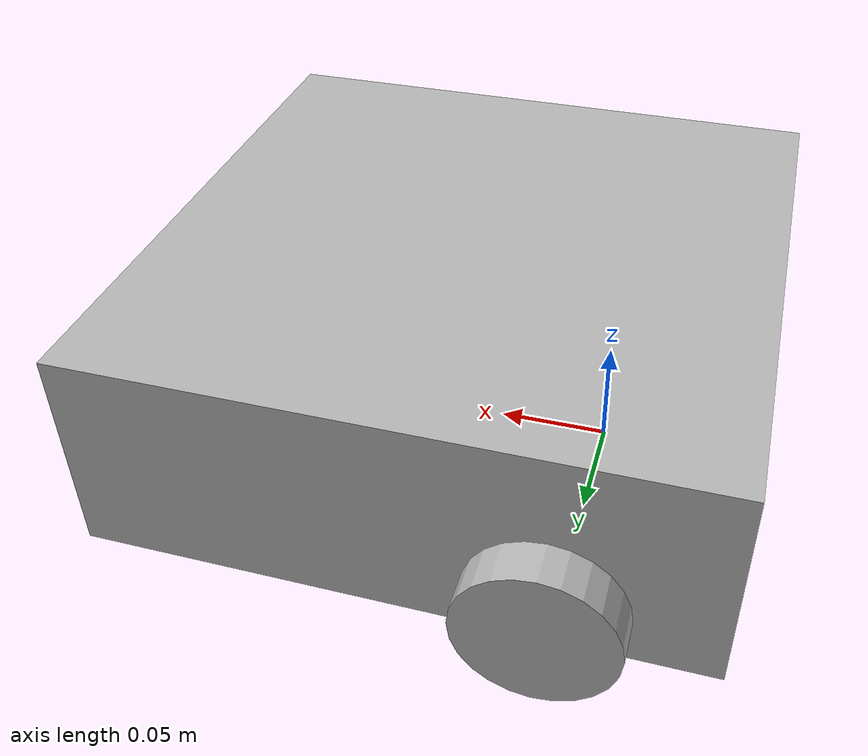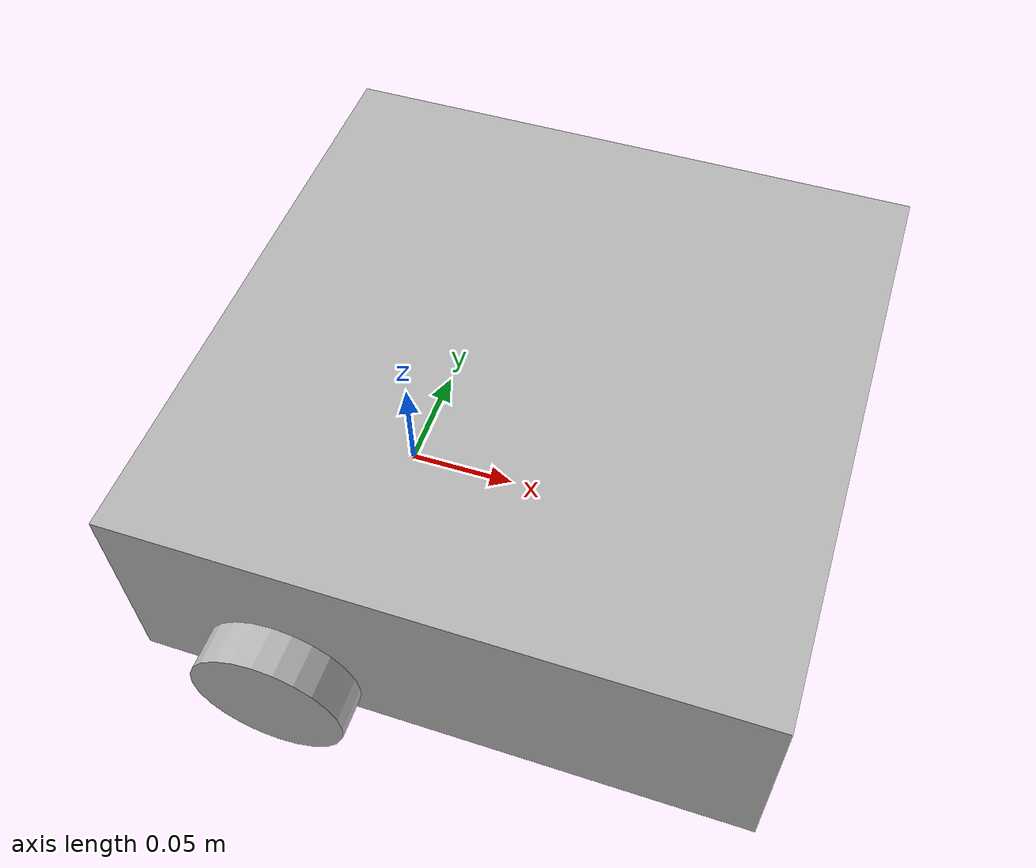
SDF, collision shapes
<sdf version='1.7'>
  <model name='trashbot'>
    <link name='base_footprint'>
      <inertial>
        <pose>0 0 0.011763 0 -0 0</pose>
        <mass>1.48691</mass>
        <inertia>
          <ixx>0.0111645</ixx>
          <ixy>-4.75766e-05</ixy>
          <ixz>0.000111605</ixz>
          <iyy>0.00875807</iyy>
          <iyz>-3.54217e-06</iyz>
          <izz>0.0170213</izz>
        </inertia>
      </inertial>
      <collision name='base_footprint_fixed_joint_lump__base_link_collision'>
        <pose>0.064 0 0.057 0 -0 0</pose>
        <geometry>
          <box>
            <size>0.266 0.266 0.094</size>
          </box>
        </geometry>
      </collision>
      <collision name='base_footprint_fixed_joint_lump__wheel_back_left_link_collision_1'>
        <pose>0 0.144 0.033 1.57 -0 0</pose>
        <geometry>
          <cylinder>
            <length>0.018</length>
            <radius>0.033</radius>
          </cylinder>
        </geometry>
      </collision>
      <collision name='base_footprint_fixed_joint_lump__wheel_back_right_link_collision_2'>
        <pose>0 0.144 0.033 1.57 -0 0</pose>
        <geometry>
          <cylinder>
            <length>0.018</length>
            <radius>0.033</radius>
          </cylinder>
        </geometry>
      </collision>
      <collision name='base_footprint_fixed_joint_lump__wheel_front_left_link_collision_3'>
        <pose>0 -0.144 0.033 -1.57 0 0</pose>
        <geometry>
          <cylinder>
            <length>0.018</length>
            <radius>0.033</radius>
          </cylinder>
        </geometry>
      </collision>
      <collision name='base_footprint_fixed_joint_lump__wheel_front_right_link_collision_4'>
        <pose>0 -0.144 0.033 -1.57 0 0</pose>
        <geometry>
          <cylinder>
            <length>0.018</length>
            <radius>0.033</radius>
          </cylinder>
        </geometry>
      </collision>
      <visual name='base_footprint_fixed_joint_lump__base_link_visual'>
        <pose>-0.064 0 0.01 0 -0 0</pose>
        <geometry>
          <mesh>
            <scale>0.001 0.001 0.001</scale>
            <uri>model://trashbot/meshes/trashbot_base_v1.stl</uri>
          </mesh>
        </geometry>
      </visual>
      <visual name='base_footprint_fixed_joint_lump__imu_link_visual_1'>
        <pose>-0.065 0 0.315 0 -0 0</pose>
        <geometry>
          <box>
            <size>0.02 0.02 0.01</size>
          </box>
        </geometry>
      </visual>
      <visual name='base_footprint_fixed_joint_lump__wheel_back_left_link_visual_2'>
        <pose>-0.02 0.044008 0.04308 3.14 -0 0</pose>
        <geometry>
          <mesh>
            <scale>0.001 0.001 0.001</scale>
            <uri>model://trashbot/meshes/trashbot_wheel_v1.stl</uri>
          </mesh>
        </geometry>
      </visual>
      <visual name='base_footprint_fixed_joint_lump__wheel_back_right_link_visual_3'>
        <pose>-0.134 0.044008 0.04308 3.14 -0 0</pose>
        <geometry>
          <mesh>
            <scale>0.001 0.001 0.001</scale>
            <uri>model://trashbot/meshes/trashbot_wheel_v1.stl</uri>
          </mesh>
        </geometry>
      </visual>
      <visual name='base_footprint_fixed_joint_lump__wheel_front_left_link_visual_4'>
        <pose>-0.02 -0.04396 -0.01692 0 -0 0</pose>
        <geometry>
          <mesh>
            <scale>0.001 0.001 0.001</scale>
            <uri>model://trashbot/meshes/trashbot_wheel_v1.stl</uri>
          </mesh>
        </geometry>
      </visual>
      <visual name='base_footprint_fixed_joint_lump__wheel_front_right_link_visual_5'>
        <pose>-0.134 -0.04396 -0.01692 0 -0 0</pose>
        <geometry>
          <mesh>
            <scale>0.001 0.001 0.001</scale>
            <uri>model://trashbot/meshes/trashbot_wheel_v1.stl</uri>
          </mesh>
        </geometry>
      </visual>
      <gravity>1</gravity>
      <sensor name='imu_sensor' type='imu'>
        <always_on>1</always_on>
        <update_rate>100</update_rate>
        <visualize>1</visualize>
        <topic>__default_topic__</topic>
        <plugin name='imu_plugin' filename='libgazebo_ros_imu_sensor.so'>
          <topicName>imu</topicName>
          <bodyName>imu_link</bodyName>
          <updateRateHZ>10.0</updateRateHZ>
          <gaussianNoise>0.0</gaussianNoise>
          <xyzOffset>0 0 0</xyzOffset>
          <rpyOffset>0 0 0</rpyOffset>
          <frameName>imu_link</frameName>
          <initialOrientationAsReference>0</initialOrientationAsReference>
        </plugin>
        <pose>-0.065 0 0.315 0 -0 0</pose>
      </sensor>
    </link>
  </model>
</sdf>
